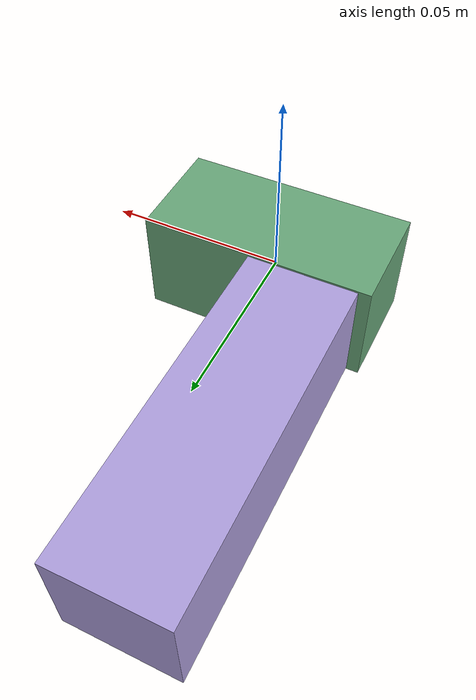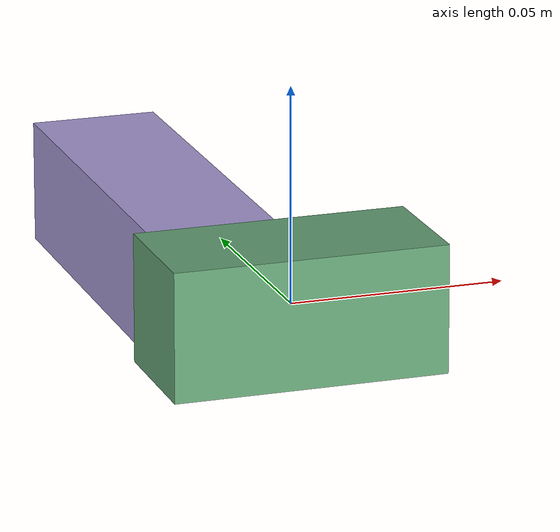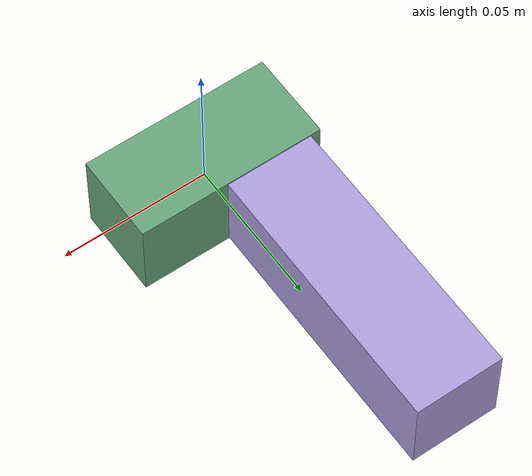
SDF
<sdf version="1.4"><world name="default"><model name="object0"><link name="link1"><pose>0 0 0 0 0 0</pose><inertial><pose>0 0 0 0 0 0</pose><mass>0.034355198443400556</mass><inertia><ixx>5.153279766510082e-06</ixx><ixy>0</ixy><iyy>1.4164643410045273e-05</iyy><ixz>0</ixz><iyz>0</iyz><izz>1.4164643410045273e-05</izz></inertia></inertial><visual name="link1_visual"><pose>0 0  0 0 0 0</pose><geometry><box><size>0.06362073785814919 0.03 0.03</size></box></geometry><material><diffuse>0.40715537081882947 0.655042547285482 0.4756074494749044 1</diffuse></material></visual><collision><pose>0 0  0 0 0 0</pose><geometry><box><size>0.06362073785814919 0.03 0.03</size></box></geometry></collision></link><link name="link2"><pose>-0.013417301746282652 0.06068626037009652 0 0 0 0</pose><inertial><pose>0 0 0 0 0 0</pose><mass>0.05084077116330271</mass><inertia><ixx>4.1118078276668765e-05</ixx><ixy>0</ixy><iyy>7.376148549609168e-06</iyy><ixz>0</ixz><iyz>0</iyz><izz>4.1368045401555e-05</izz></inertia></inertial><visual name="link2_visual"><pose>0 0  0 0 0 0</pose><geometry><box><size>0.03 0.09414957622833835 0.028999999999999998</size></box></geometry><material><diffuse>0.6849434649150633 0.6250719134102388 0.8686812987762158 1</diffuse></material></visual><collision><pose>0 0  0 0 0 0</pose><geometry><box><size>0.03 0.09414957622833835 0.028999999999999998</size></box></geometry></collision></link><joint name="link_joint_0" type="fixed"><parent>link1</parent><child>link2</child><pose>0 0 0 0 0 0</pose><axis><xyz>0 0 1</xyz></axis></joint></model></world></sdf>
